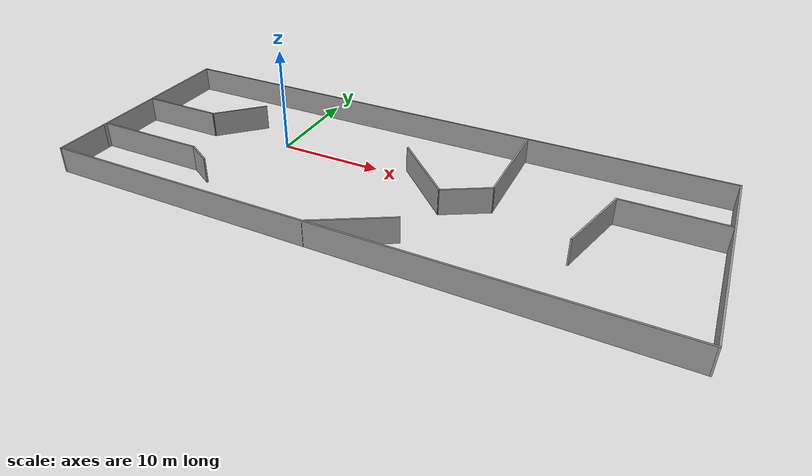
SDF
<?xml version='1.0'?>
<sdf version='1.7'>
  <model name='hamsterworld'>
    <pose>12.3658 -2.78804 0 0 -0 0</pose>
    <link name='Wall_0'>
      <collision name='Wall_0_Collision'>
        <geometry>
          <box>
            <size>15.75 0.15 2.5</size>
          </box>
        </geometry>
        <pose>0 0 1.25 0 -0 0</pose>
      </collision>
      <visual name='Wall_0_Visual'>
        <pose>0 0 1.25 0 -0 0</pose>
        <geometry>
          <box>
            <size>15.75 0.15 2.5</size>
          </box>
        </geometry>
        <material>
          <script>
            <uri>file://media/materials/scripts/gazebo.material</uri>
            <name>Gazebo/Grey</name>
          </script>
          <ambient>1 1 1 1</ambient>
        </material>
        <meta>
          <layer>0</layer>
        </meta>
      </visual>
      <pose>-28.175 2.48297 0 0 -0 -1.5708</pose>
    </link>
    <link name='Wall_1'>
      <collision name='Wall_1_Collision'>
        <geometry>
          <box>
            <size>5.25 0.15 2.5</size>
          </box>
        </geometry>
        <pose>0 0 1.25 0 -0 0</pose>
      </collision>
      <visual name='Wall_1_Visual'>
        <pose>0 0 1.25 0 -0 0</pose>
        <geometry>
          <box>
            <size>5.25 0.15 2.5</size>
          </box>
        </geometry>
        <material>
          <script>
            <uri>file://media/materials/scripts/gazebo.material</uri>
            <name>Gazebo/Grey</name>
          </script>
          <ambient>1 1 1 1</ambient>
        </material>
        <meta>
          <layer>0</layer>
        </meta>
      </visual>
      <pose>-28.175 -7.86703 0 0 -0 -1.5708</pose>
    </link>
    <link name='Wall_10'>
      <collision name='Wall_10_Collision'>
        <geometry>
          <box>
            <size>5.5 0.15 2.5</size>
          </box>
        </geometry>
        <pose>0 0 1.25 0 -0 0</pose>
      </collision>
      <visual name='Wall_10_Visual'>
        <pose>0 0 1.25 0 -0 0</pose>
        <geometry>
          <box>
            <size>5.5 0.15 2.5</size>
          </box>
        </geometry>
        <material>
          <script>
            <uri>file://media/materials/scripts/gazebo.material</uri>
            <name>Gazebo/Grey</name>
          </script>
          <ambient>1 1 1 1</ambient>
        </material>
        <meta>
          <layer>0</layer>
        </meta>
      </visual>
      <pose>-18.2967 3.41704 0 0 -0 0.785398</pose>
    </link>
    <link name='Wall_12'>
      <collision name='Wall_12_Collision'>
        <geometry>
          <box>
            <size>9.75 0.15 2.5</size>
          </box>
        </geometry>
        <pose>0 0 1.25 0 -0 0</pose>
      </collision>
      <visual name='Wall_12_Visual'>
        <pose>0 0 1.25 0 -0 0</pose>
        <geometry>
          <box>
            <size>9.75 0.15 2.5</size>
          </box>
        </geometry>
        <material>
          <script>
            <uri>file://media/materials/scripts/gazebo.material</uri>
            <name>Gazebo/Grey</name>
          </script>
          <ambient>1 1 1 1</ambient>
        </material>
        <meta>
          <layer>0</layer>
        </meta>
      </visual>
      <pose>9.68101 5.60695 0 0 -0 -1.5708</pose>
    </link>
    <link name='Wall_13'>
      <collision name='Wall_13_Collision'>
        <geometry>
          <box>
            <size>4.75 0.15 2.5</size>
          </box>
        </geometry>
        <pose>0 0 1.25 0 -0 0</pose>
      </collision>
      <visual name='Wall_13_Visual'>
        <pose>0 0 1.25 0 -0 0</pose>
        <geometry>
          <box>
            <size>4.75 0.15 2.5</size>
          </box>
        </geometry>
        <material>
          <script>
            <uri>file://media/materials/scripts/gazebo.material</uri>
            <name>Gazebo/Grey</name>
          </script>
          <ambient>1 1 1 1</ambient>
        </material>
        <meta>
          <layer>0</layer>
        </meta>
      </visual>
      <pose>7.68915 -0.34305 0 0 -0 -2.61799</pose>
    </link>
    <link name='Wall_14'>
      <collision name='Wall_14_Collision'>
        <geometry>
          <box>
            <size>7.75 0.15 2.5</size>
          </box>
        </geometry>
        <pose>0 0 1.25 0 -0 0</pose>
      </collision>
      <visual name='Wall_14_Visual'>
        <pose>0 0 1.25 0 -0 0</pose>
        <geometry>
          <box>
            <size>7.75 0.15 2.5</size>
          </box>
        </geometry>
        <material>
          <script>
            <uri>file://media/materials/scripts/gazebo.material</uri>
            <name>Gazebo/Grey</name>
          </script>
          <ambient>1 1 1 1</ambient>
        </material>
        <meta>
          <layer>0</layer>
        </meta>
      </visual>
      <pose>3.01028 1.19396 0 0 -0 2.35619</pose>
    </link>
    <link name='Wall_16'>
      <collision name='Wall_16_Collision'>
        <geometry>
          <box>
            <size>7.75 0.15 2.5</size>
          </box>
        </geometry>
        <pose>0 0 1.25 0 -0 0</pose>
      </collision>
      <visual name='Wall_16_Visual'>
        <pose>0 0 1.25 0 -0 0</pose>
        <geometry>
          <box>
            <size>7.75 0.15 2.5</size>
          </box>
        </geometry>
        <material>
          <script>
            <uri>file://media/materials/scripts/gazebo.material</uri>
            <name>Gazebo/Grey</name>
          </script>
          <ambient>1 1 1 1</ambient>
        </material>
        <meta>
          <layer>0</layer>
        </meta>
      </visual>
      <pose>1.20135 -8.50552 0 0 -0 0.523599</pose>
    </link>
    <link name='Wall_19'>
      <collision name='Wall_19_Collision'>
        <geometry>
          <box>
            <size>9 0.15 2.5</size>
          </box>
        </geometry>
        <pose>0 0 1.25 0 -0 0</pose>
      </collision>
      <visual name='Wall_19_Visual'>
        <pose>0 0 1.25 0 -0 0</pose>
        <geometry>
          <box>
            <size>9 0.15 2.5</size>
          </box>
        </geometry>
        <material>
          <script>
            <uri>file://media/materials/scripts/gazebo.material</uri>
            <name>Gazebo/Grey</name>
          </script>
          <ambient>1 1 1 1</ambient>
        </material>
        <meta>
          <layer>0</layer>
        </meta>
      </visual>
      <pose>23.6074 3.71914 0 0 -0 3.14159</pose>
    </link>
    <link name='Wall_2'>
      <collision name='Wall_2_Collision'>
        <geometry>
          <box>
            <size>56.5 0.15 2.5</size>
          </box>
        </geometry>
        <pose>0 0 1.25 0 -0 0</pose>
      </collision>
      <visual name='Wall_2_Visual'>
        <pose>0 0 1.25 0 -0 0</pose>
        <geometry>
          <box>
            <size>56.5 0.15 2.5</size>
          </box>
        </geometry>
        <material>
          <script>
            <uri>file://media/materials/scripts/gazebo.material</uri>
            <name>Gazebo/Grey</name>
          </script>
          <ambient>1 1 1 1</ambient>
        </material>
        <meta>
          <layer>0</layer>
        </meta>
      </visual>
      <pose>-0 -10.417 0 0 -0 0</pose>
    </link>
    <link name='Wall_20'>
      <collision name='Wall_20_Collision'>
        <geometry>
          <box>
            <size>7.5 0.15 2.5</size>
          </box>
        </geometry>
        <pose>0 0 1.25 0 -0 0</pose>
      </collision>
      <visual name='Wall_20_Visual'>
        <pose>0 0 1.25 0 -0 0</pose>
        <geometry>
          <box>
            <size>7.5 0.15 2.5</size>
          </box>
        </geometry>
        <material>
          <script>
            <uri>file://media/materials/scripts/gazebo.material</uri>
            <name>Gazebo/Grey</name>
          </script>
          <ambient>1 1 1 1</ambient>
        </material>
        <meta>
          <layer>0</layer>
        </meta>
      </visual>
      <pose>18.2312 0.16936 0 0 -0 -1.8326</pose>
    </link>
    <link name='Wall_3'>
      <collision name='Wall_3_Collision'>
        <geometry>
          <box>
            <size>21 0.15 2.5</size>
          </box>
        </geometry>
        <pose>0 0 1.25 0 -0 0</pose>
      </collision>
      <visual name='Wall_3_Visual'>
        <pose>0 0 1.25 0 -0 0</pose>
        <geometry>
          <box>
            <size>21 0.15 2.5</size>
          </box>
        </geometry>
        <material>
          <script>
            <uri>file://media/materials/scripts/gazebo.material</uri>
            <name>Gazebo/Grey</name>
          </script>
          <ambient>1 1 1 1</ambient>
        </material>
        <meta>
          <layer>0</layer>
        </meta>
      </visual>
      <pose>28.175 0.007974 0 0 -0 1.5708</pose>
    </link>
    <link name='Wall_4'>
      <collision name='Wall_4_Collision'>
        <geometry>
          <box>
            <size>56.5 0.15 2.5</size>
          </box>
        </geometry>
        <pose>0 0 1.25 0 -0 0</pose>
      </collision>
      <visual name='Wall_4_Visual'>
        <pose>0 0 1.25 0 -0 0</pose>
        <geometry>
          <box>
            <size>56.5 0.15 2.5</size>
          </box>
        </geometry>
        <material>
          <script>
            <uri>file://media/materials/scripts/gazebo.material</uri>
            <name>Gazebo/Grey</name>
          </script>
          <ambient>1 1 1 1</ambient>
        </material>
        <meta>
          <layer>0</layer>
        </meta>
      </visual>
      <pose>-0 10.433 0 0 -0 3.14159</pose>
    </link>
    <link name='Wall_6'>
      <collision name='Wall_6_Collision'>
        <geometry>
          <box>
            <size>10.75 0.15 2.5</size>
          </box>
        </geometry>
        <pose>0 0 1.25 0 -0 0</pose>
      </collision>
      <visual name='Wall_6_Visual'>
        <pose>0 0 1.25 0 -0 0</pose>
        <geometry>
          <box>
            <size>10.75 0.15 2.5</size>
          </box>
        </geometry>
        <material>
          <script>
            <uri>file://media/materials/scripts/gazebo.material</uri>
            <name>Gazebo/Grey</name>
          </script>
          <ambient>1 1 1 1</ambient>
        </material>
        <meta>
          <layer>0</layer>
        </meta>
      </visual>
      <pose>-22.7383 -4.78776 0 0 -0 0</pose>
    </link>
    <link name='Wall_7'>
      <collision name='Wall_7_Collision'>
        <geometry>
          <box>
            <size>2.75 0.15 2.5</size>
          </box>
        </geometry>
        <pose>0 0 1.25 0 -0 0</pose>
      </collision>
      <visual name='Wall_7_Visual'>
        <pose>0 0 1.25 0 -0 0</pose>
        <geometry>
          <box>
            <size>2.75 0.15 2.5</size>
          </box>
        </geometry>
        <material>
          <script>
            <uri>file://media/materials/scripts/gazebo.material</uri>
            <name>Gazebo/Grey</name>
          </script>
          <ambient>1 1 1 1</ambient>
        </material>
        <meta>
          <layer>0</layer>
        </meta>
      </visual>
      <pose>-16.3124 -5.43776 0 0 -0 -0.523599</pose>
    </link>
    <link name='Wall_9'>
      <collision name='Wall_9_Collision'>
        <geometry>
          <box>
            <size>8 0.15 2.5</size>
          </box>
        </geometry>
        <pose>0 0 1.25 0 -0 0</pose>
      </collision>
      <visual name='Wall_9_Visual'>
        <pose>0 0 1.25 0 -0 0</pose>
        <geometry>
          <box>
            <size>8 0.15 2.5</size>
          </box>
        </geometry>
        <material>
          <script>
            <uri>file://media/materials/scripts/gazebo.material</uri>
            <name>Gazebo/Grey</name>
          </script>
          <ambient>1 1 1 1</ambient>
        </material>
        <meta>
          <layer>0</layer>
        </meta>
      </visual>
      <pose>-24.1133 1.52554 0 0 -0 0</pose>
    </link>
    <static>1</static>
  </model>
</sdf>
